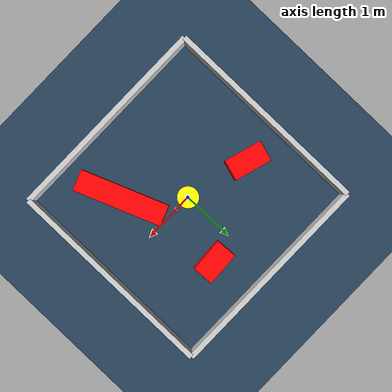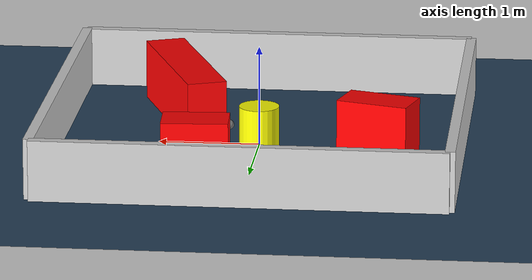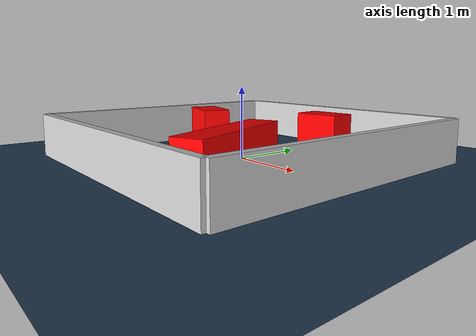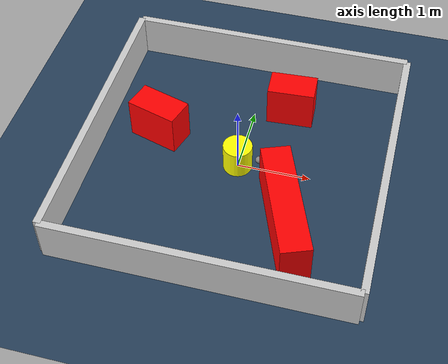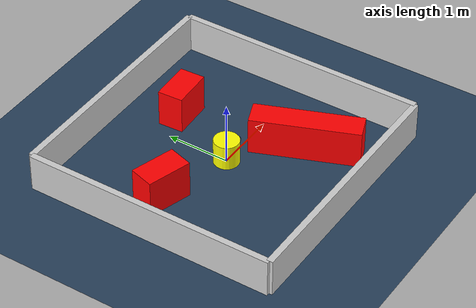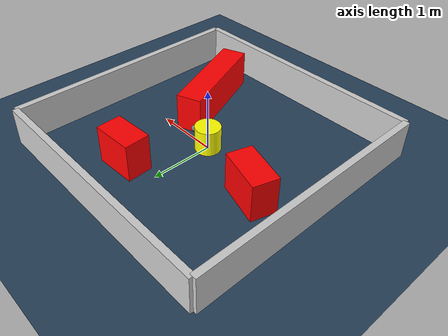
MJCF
<?xml version="1.0" ?>
<mujoco model="generated_environment">
  <option timestep="0.01" integrator="RK4" cone="elliptic"/>
  <default>
    <geom density="1"/>
  </default>
  <asset>
    <texture builtin="gradient" height="3072" rgb1="0.3 0.5 0.7" rgb2="0 0 0" type="skybox" width="512"/>
    <texture builtin="checker" height="300" mark="edge" markrgb="0.8 0.8 0.8" name="groundplane" rgb1="0.2 0.3 0.4" rgb2="0.1 0.2 0.3" type="2d" width="300"/>
    <material name="groundplane" reflectance="0.2" texrepeat="5 5" texture="groundplane" texuniform="true"/>
    <material name="robot" rgba="0.0 1.0 0.0 1"/>
  </asset>
  <worldbody>
    <light dir="0 0 -1" directional="true" pos="0 0 1.5"/>
    <geom condim="4" friction="1.0 0.005 0.001" material="groundplane" name="floor" size="0 0 0.05" type="plane"/>
    <body name="walls">
      <geom name="wall_1" condim="4" pos="-2.0 0.0 0.3" rgba="0.800000011920929 0.800000011920929 0.800000011920929 1.0" size="0.05 2.0 0.3" type="box"/>
      <geom name="wall_2" condim="4" pos="2.0 0.0 0.3" rgba="0.800000011920929 0.800000011920929 0.800000011920929 1.0" size="0.05 2.0 0.3" type="box"/>
      <geom name="wall_3" condim="4" pos="0.0 -2.0 0.3" rgba="0.800000011920929 0.800000011920929 0.800000011920929 1.0" size="2.0 0.05 0.3" type="box"/>
      <geom name="wall_4" condim="4" pos="0.0 2.0 0.3" rgba="0.800000011920929 0.800000011920929 0.800000011920929 1.0" size="2.0 0.05 0.3" type="box"/>
    </body>
    <body name="robot">
      <joint name="joint_x" type="slide" pos="0 0 0" axis="1 0 0"/>
      <joint name="joint_y" type="slide" pos="0 0 0" axis="0 1 0"/>
      <geom name="robot" type="sphere" pos="0.3 0.0 0.2" size="0.05" mass="5." friction="1.0 0.005 0.0001" condim="4" rgba="0.5 0.5 0.5 1.0"/>
      <site name="sensor_ball"/>
    </body>
    <body name="obstacle_movable_1">
      <geom name="obstacle_movable_1" condim="4" pos="0.0 0.0 0.2" euler="0 0 0.0" friction="1.0 0.005 0.001" rgba="1.0 1.0 0.0 1.0" size="0.2 0.2 0.0" type="cylinder" mass="0.1"/>
      <joint type="free"/>
    </body>
    <body name="obstacle_2_static">
      <geom name="obstacle_2_static" condim="4" pos="0.8324271141404747 -0.8533894449028577 0.3" euler="0 0 111.4455695520369" friction="1.0 0.005 0.001" rgba="1 0 0 1" size="0.837637995576529 0.2 0.3" type="box"/>
    </body>
    <body name="obstacle_3_static">
      <geom name="obstacle_3_static" condim="4" pos="0.5046907353218559 1.1361435418673043 0.3" euler="0 0 183.10460752888227" friction="1.0 0.005 0.001" rgba="1 0 0 1" size="0.32614444848057916 0.2 0.3" type="box"/>
    </body>
    <body name="obstacle_4_static">
      <geom name="obstacle_4_static" condim="4" pos="-1.204185369421555 0.31736879299415066 0.3" euler="0 0 343.3694767307457" friction="1.0 0.005 0.001" rgba="1 0 0 1" size="0.36030003293618673 0.2 0.3" type="box"/>
    </body>
  </worldbody>
  <actuator>
    <motor name="actuator_x" joint="joint_x" gear="1" ctrlrange="-1 1"/>
    <motor name="actuator_y" joint="joint_y" gear="1" ctrlrange="-1 1"/>
  </actuator>
</mujoco>
